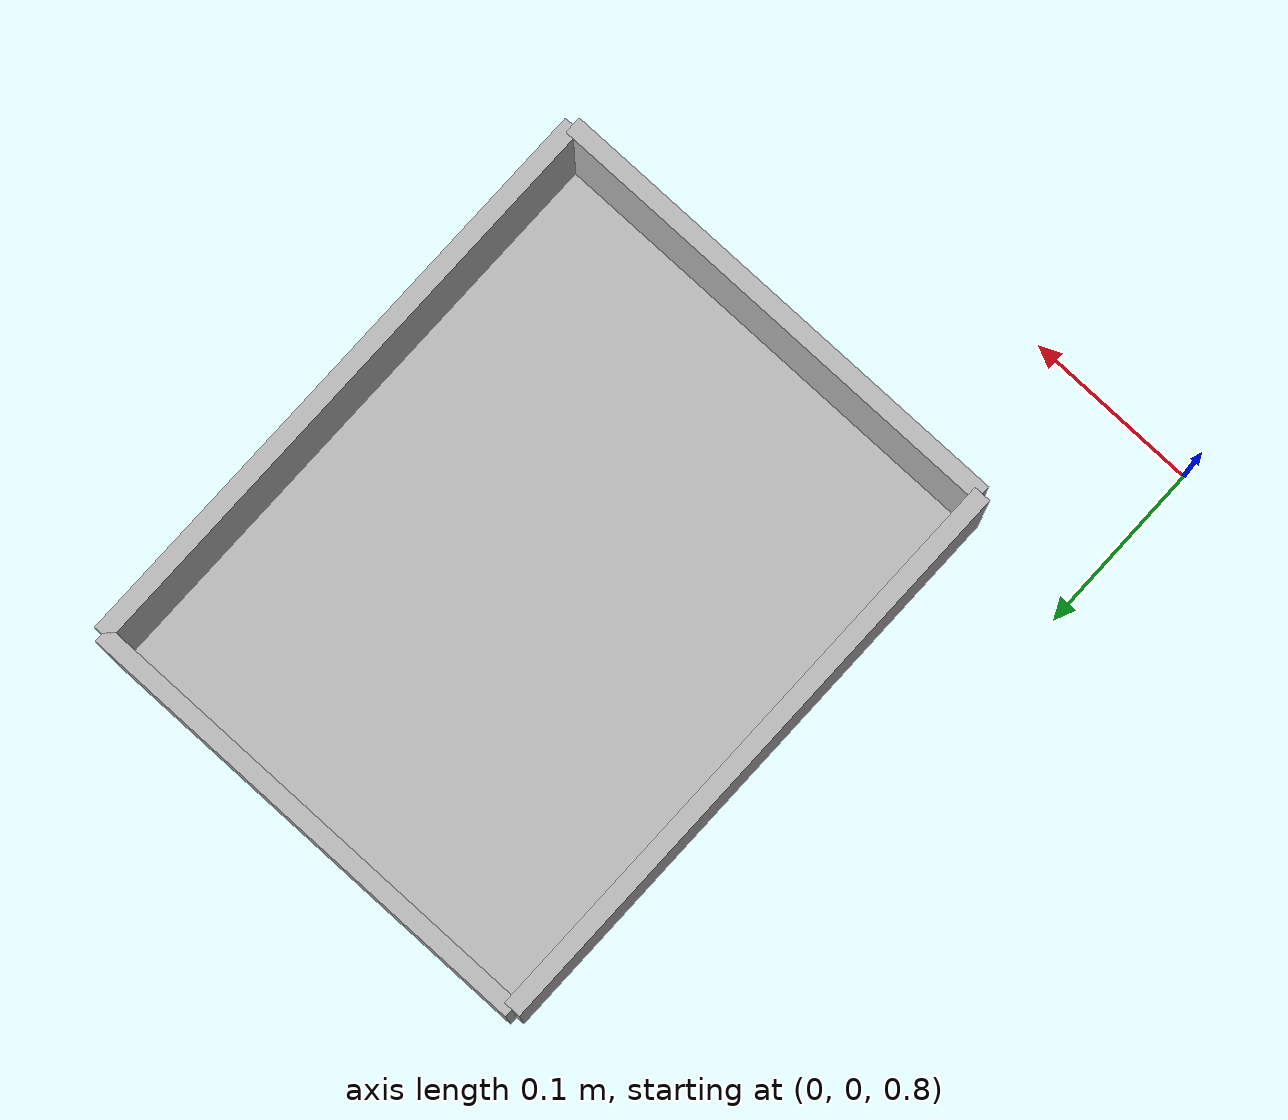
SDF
<?xml version='1.0'?>
<sdf version='1.6'>
  <model name="soporteInvisible">
    <static>true</static>
    <pose>0.204899 0.260207 0.768140 0 0 0</pose>
    <link name="link">

      <!-- Piso -->
      <collision name="collision_floor">
        <geometry>
          <box>
            <size>0.276076 0.346434 0.030000</size>
          </box>
        </geometry>
      </collision>
      <visual name="visual_floor">
        <geometry>
          <box>
            <size>0.276076 0.346434 0.030000</size>
          </box>
        </geometry>
      </visual>

      <!-- Pared izquierda -->
      <collision name="collision_wall_left">
        <pose>-0.138 0 0.06 0 0 0</pose>
        <geometry>
          <box>
            <size>0.01 0.346434 0.12</size>
          </box>
        </geometry>
      </collision>
      <visual name="visual_wall_left">
        <pose>-0.138 0 0.06 0 0 0</pose>
        <geometry>
          <box>
            <size>0.01 0.346434 0.12</size>
          </box>
        </geometry>
      </visual>

      <!-- Pared derecha -->
      <collision name="collision_wall_right">
        <pose>0.138 0 0.06 0 0 0</pose>
        <geometry>
          <box>
            <size>0.01 0.346434 0.12</size>
          </box>
        </geometry>
      </collision>
      <visual name="visual_wall_right">
        <pose>0.138 0 0.06 0 0 0</pose>
        <geometry>
          <box>
            <size>0.01 0.346434 0.12</size>
          </box>
        </geometry>
      </visual>

      <!-- Pared trasera -->
      <collision name="collision_wall_back">
        <pose>0 -0.173 0.06 0 0 0</pose>
        <geometry>
          <box>
            <size>0.276076 0.01 0.12</size>
          </box>
        </geometry>
      </collision>
      <visual name="visual_wall_back">
        <pose>0 -0.173 0.06 0 0 0</pose>
        <geometry>
          <box>
            <size>0.276076 0.01 0.12</size>
          </box>
        </geometry>
      </visual>

      <!-- Pared delantera -->
      <collision name="collision_wall_front">
        <pose>0 0.173 0.06 0 0 0</pose>
        <geometry>
          <box>
            <size>0.276076 0.01 0.12</size>
          </box>
        </geometry>
      </collision>
      <visual name="visual_wall_front">
        <pose>0 0.173 0.06 0 0 0</pose>
        <geometry>
          <box>
            <size>0.276076 0.01 0.12</size>
          </box>
        </geometry>
      </visual>

    </link>
  </model>
</sdf>
